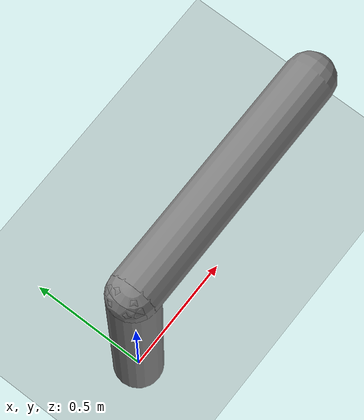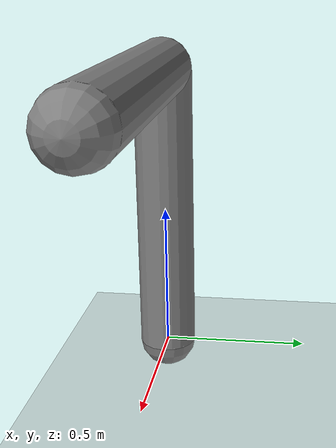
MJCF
<mujoco model="two_link_arm">

  <compiler angle="degree" coordinate="local"/>

  <option gravity="0 0 -9.81"/>

  <asset>
    <texture name="texplane" type="2d" builtin="checker" rgb1="0.8 0.8 0.8" rgb2="0.2 0.2 0.2" width="512" height="512"/>
    <material name="matplane" texture="texplane" texrepeat="15 15"/>
  </asset>

  <worldbody>
    <light diffuse="1 1 1" pos="0 0 3"/>
    <geom name="plane" type="plane" size="20 20 1" material="matplane" friction="1 0.1 0.1"/>
    <body name="link1" pos="0 0 0">
      <joint name="j1" type="hinge" axis="0 0 1" pos="0 0 0"/>
      <geom name="link1" type="capsule" fromto="0 0 0 0 0 1" size="0.1"/>
      <body name="link2" pos="0 0 1">
        <joint name="j2" type="hinge" axis="1 0 0" pos="0 0 0"/>
        <geom name="link2" type="capsule" fromto="0 0 0 1 0 0" size="0.1"/>
      </body>
    </body>
  </worldbody>

</mujoco>
